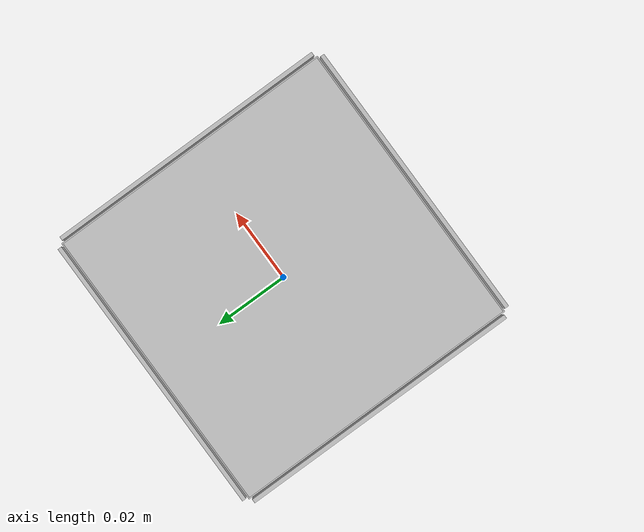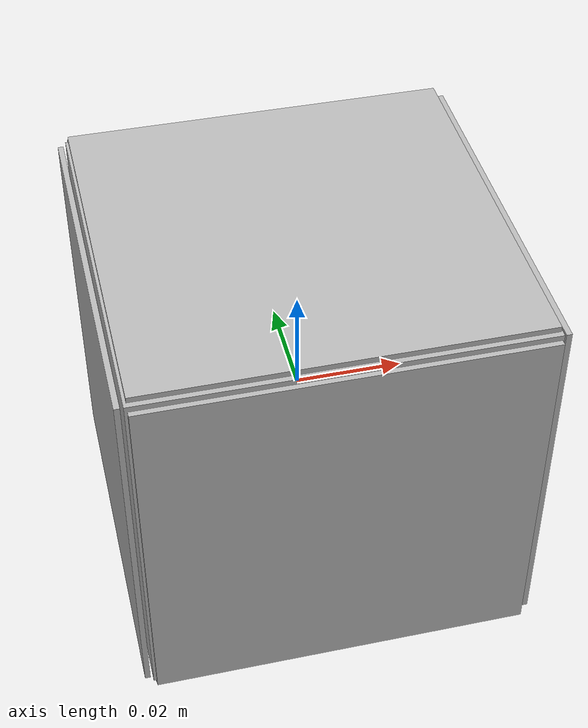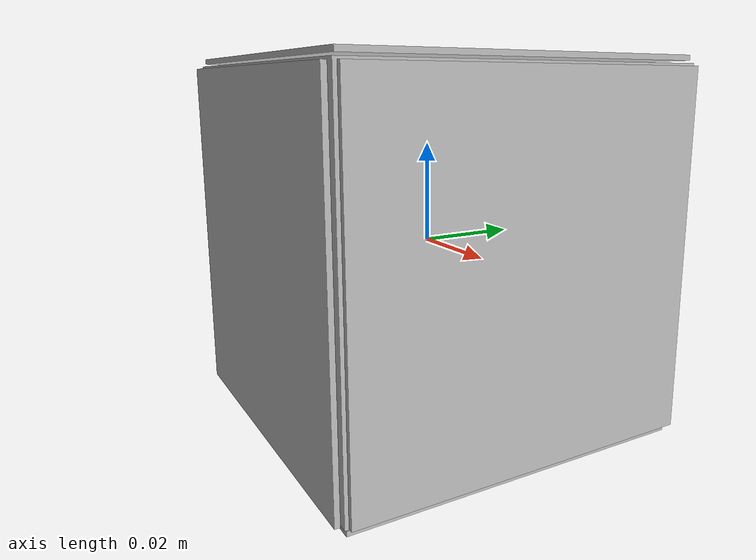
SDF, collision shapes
<?xml version='1.0'?>
<sdf version='1.7'>
  <model name='april_cube'>
    <link name='april_cube_40'>
      <pose>0 0 0 0 -0 0</pose>
      <inertial>
        <pose>0 0 0 0 -0 0</pose>
        <mass>0.036</mass>
        <inertia>
          <ixx>0.00108533</ixx>
          <ixy>-1.20708e-12</ixy>
          <ixz>-2.45849e-16</ixz>
          <iyy>8.5329e-05</iyy>
          <iyz>4.99917e-09</iyz>
          <izz>8.5329e-05</izz>
        </inertia>
      </inertial>
      <gravity>1</gravity>
      <self_collide>0</self_collide>
      <enable_wind>0</enable_wind>
      <kinematic>0</kinematic>
      <visual name='april_cube_40_visual'>
        <pose>0 0 0 0 -0 0</pose>
        <geometry>
          <box>
            <size>0.071 0.071 0.071</size>
          </box>
        </geometry>
        <material>
          <shader type='pixel'/>
        </material>
        <transparency>0</transparency>
        <cast_shadows>1</cast_shadows>
      </visual>
      <visual name='april_cube_40_tag_40_visual_1'>
        <pose>0 0 0.0365 0 -0 0</pose>
        <geometry>
          <mesh>
            <scale>0.7 0.7 1</scale>
            <uri>/home/coll0215/catkin_ws/src/turtlebot3_task/meshes/tag36_11_00040.dae</uri>
          </mesh>
        </geometry>
        <material>
          <shader type='pixel'/>
        </material>
        <transparency>0</transparency>
        <cast_shadows>1</cast_shadows>
      </visual>
      <visual name='april_cube_40_tag_41_visual_2'>
        <pose>0 -0.0365 0 1.571 -0 0</pose>
        <geometry>
          <mesh>
            <scale>0.7 0.7 1</scale>
            <uri>/home/coll0215/catkin_ws/src/turtlebot3_task/meshes/tag36_11_00041.dae</uri>
          </mesh>
        </geometry>
        <material>
          <shader type='pixel'/>
        </material>
        <transparency>0</transparency>
        <cast_shadows>1</cast_shadows>
      </visual>
      <visual name='april_cube_40_tag_42_visual_3'>
        <pose>0.0365 0 0 1.571 -0 1.571</pose>
        <geometry>
          <mesh>
            <scale>0.7 0.7 1</scale>
            <uri>/home/coll0215/catkin_ws/src/turtlebot3_task/meshes/tag36_11_00042.dae</uri>
          </mesh>
        </geometry>
        <material>
          <shader type='pixel'/>
        </material>
        <transparency>0</transparency>
        <cast_shadows>1</cast_shadows>
      </visual>
      <visual name='april_cube_40_tag_43_visual_4'>
        <pose>0 0.0365 0 1.57059 0.000593 3.14159</pose>
        <geometry>
          <mesh>
            <scale>0.7 0.7 1</scale>
            <uri>/home/coll0215/catkin_ws/src/turtlebot3_task/meshes/tag36_11_00043.dae</uri>
          </mesh>
        </geometry>
        <material>
          <shader type='pixel'/>
        </material>
        <transparency>0</transparency>
        <cast_shadows>1</cast_shadows>
      </visual>
      <visual name='april_cube_40_tag_44_visual_5'>
        <pose>-0.0365 0 0 1.571 -0 -1.571</pose>
        <geometry>
          <mesh>
            <scale>0.7 0.7 1</scale>
            <uri>/home/coll0215/catkin_ws/src/turtlebot3_task/meshes/tag36_11_00044.dae</uri>
          </mesh>
        </geometry>
        <material>
          <shader type='pixel'/>
        </material>
        <transparency>0</transparency>
        <cast_shadows>1</cast_shadows>
      </visual>
      <visual name='april_cube_40_tag_45_visual_6'>
        <pose>0 0 -0.0365 3.1415 -0 0</pose>
        <geometry>
          <mesh>
            <scale>0.7 0.7 1</scale>
            <uri>/home/coll0215/catkin_ws/src/turtlebot3_task/meshes/tag36_11_00045.dae</uri>
          </mesh>
        </geometry>
        <material>
          <shader type='pixel'/>
        </material>
        <transparency>0</transparency>
        <cast_shadows>1</cast_shadows>
      </visual>
      <collision name='april_cube_40_collision'>
        <laser_retro>0</laser_retro>
        <max_contacts>10</max_contacts>
        <pose>0 0 0 0 -0 0</pose>
        <geometry>
          <box>
            <size>0.071 0.071 0.071</size>
          </box>
        </geometry>
        <surface>
          <friction>
            <ode>
              <mu>100</mu>
              <mu2>100</mu2>
              <fdir1>0 0 0</fdir1>
              <slip1>0</slip1>
              <slip2>0</slip2>
            </ode>
            <torsional>
              <coefficient>1</coefficient>
              <patch_radius>0</patch_radius>
              <surface_radius>0</surface_radius>
              <use_patch_radius>1</use_patch_radius>
              <ode>
                <slip>0</slip>
              </ode>
            </torsional>
          </friction>
          <bounce>
            <restitution_coefficient>0</restitution_coefficient>
            <threshold>1e+06</threshold>
          </bounce>
          <contact>
            <collide_without_contact>0</collide_without_contact>
            <collide_without_contact_bitmask>1</collide_without_contact_bitmask>
            <collide_bitmask>1</collide_bitmask>
            <ode>
              <soft_cfm>0</soft_cfm>
              <soft_erp>0.2</soft_erp>
              <kp>1e+06</kp>
              <kd>1</kd>
              <max_vel>0.01</max_vel>
              <min_depth>0</min_depth>
            </ode>
            <bullet>
              <split_impulse>1</split_impulse>
              <split_impulse_penetration_threshold>-0.01</split_impulse_penetration_threshold>
              <soft_cfm>0</soft_cfm>
              <soft_erp>0.2</soft_erp>
              <kp>1e+06</kp>
              <kd>1</kd>
            </bullet>
          </contact>
        </surface>
      </collision>
      <collision name='april_cube_40_tag_40_collision_1'>
        <laser_retro>0</laser_retro>
        <max_contacts>10</max_contacts>
        <pose>0 0 0.0365 0 -0 0</pose>
        <geometry>
          <box>
            <size>0.07 0.07 0.001</size>
          </box>
        </geometry>
        <surface>
          <friction>
            <ode>
              <mu>100</mu>
              <mu2>100</mu2>
              <fdir1>0 0 0</fdir1>
              <slip1>0</slip1>
              <slip2>0</slip2>
            </ode>
            <torsional>
              <coefficient>1</coefficient>
              <patch_radius>0</patch_radius>
              <surface_radius>0</surface_radius>
              <use_patch_radius>1</use_patch_radius>
              <ode>
                <slip>0</slip>
              </ode>
            </torsional>
          </friction>
          <bounce>
            <restitution_coefficient>0</restitution_coefficient>
            <threshold>1e+06</threshold>
          </bounce>
          <contact>
            <collide_without_contact>0</collide_without_contact>
            <collide_without_contact_bitmask>1</collide_without_contact_bitmask>
            <collide_bitmask>1</collide_bitmask>
            <ode>
              <soft_cfm>0</soft_cfm>
              <soft_erp>0.2</soft_erp>
              <kp>1e+06</kp>
              <kd>1</kd>
              <max_vel>0.01</max_vel>
              <min_depth>0</min_depth>
            </ode>
            <bullet>
              <split_impulse>1</split_impulse>
              <split_impulse_penetration_threshold>-0.01</split_impulse_penetration_threshold>
              <soft_cfm>0</soft_cfm>
              <soft_erp>0.2</soft_erp>
              <kp>1e+06</kp>
              <kd>1</kd>
            </bullet>
          </contact>
        </surface>
      </collision>
      <collision name='april_cube_40_tag_41_collision_2'>
        <laser_retro>0</laser_retro>
        <max_contacts>10</max_contacts>
        <pose>0 -0.0365 0 1.571 -0 0</pose>
        <geometry>
          <box>
            <size>0.07 0.07 0.001</size>
          </box>
        </geometry>
        <surface>
          <friction>
            <ode>
              <mu>100</mu>
              <mu2>100</mu2>
              <fdir1>0 0 0</fdir1>
              <slip1>0</slip1>
              <slip2>0</slip2>
            </ode>
            <torsional>
              <coefficient>1</coefficient>
              <patch_radius>0</patch_radius>
              <surface_radius>0</surface_radius>
              <use_patch_radius>1</use_patch_radius>
              <ode>
                <slip>0</slip>
              </ode>
            </torsional>
          </friction>
          <bounce>
            <restitution_coefficient>0</restitution_coefficient>
            <threshold>1e+06</threshold>
          </bounce>
          <contact>
            <collide_without_contact>0</collide_without_contact>
            <collide_without_contact_bitmask>1</collide_without_contact_bitmask>
            <collide_bitmask>1</collide_bitmask>
            <ode>
              <soft_cfm>0</soft_cfm>
              <soft_erp>0.2</soft_erp>
              <kp>1e+06</kp>
              <kd>1</kd>
              <max_vel>0.01</max_vel>
              <min_depth>0</min_depth>
            </ode>
            <bullet>
              <split_impulse>1</split_impulse>
              <split_impulse_penetration_threshold>-0.01</split_impulse_penetration_threshold>
              <soft_cfm>0</soft_cfm>
              <soft_erp>0.2</soft_erp>
              <kp>1e+06</kp>
              <kd>1</kd>
            </bullet>
          </contact>
        </surface>
      </collision>
      <collision name='april_cube_40_tag_43_collision_4'>
        <laser_retro>0</laser_retro>
        <max_contacts>10</max_contacts>
        <pose>0 0.0365 0 1.57059 0.000593 3.14159</pose>
        <geometry>
          <box>
            <size>0.07 0.07 0.001</size>
          </box>
        </geometry>
        <surface>
          <friction>
            <ode>
              <mu>100</mu>
              <mu2>100</mu2>
              <fdir1>0 0 0</fdir1>
              <slip1>0</slip1>
              <slip2>0</slip2>
            </ode>
            <torsional>
              <coefficient>1</coefficient>
              <patch_radius>0</patch_radius>
              <surface_radius>0</surface_radius>
              <use_patch_radius>1</use_patch_radius>
              <ode>
                <slip>0</slip>
              </ode>
            </torsional>
          </friction>
          <bounce>
            <restitution_coefficient>0</restitution_coefficient>
            <threshold>1e+06</threshold>
          </bounce>
          <contact>
            <collide_without_contact>0</collide_without_contact>
            <collide_without_contact_bitmask>1</collide_without_contact_bitmask>
            <collide_bitmask>1</collide_bitmask>
            <ode>
              <soft_cfm>0</soft_cfm>
              <soft_erp>0.2</soft_erp>
              <kp>1e+06</kp>
              <kd>1</kd>
              <max_vel>0.01</max_vel>
              <min_depth>0</min_depth>
            </ode>
            <bullet>
              <split_impulse>1</split_impulse>
              <split_impulse_penetration_threshold>-0.01</split_impulse_penetration_threshold>
              <soft_cfm>0</soft_cfm>
              <soft_erp>0.2</soft_erp>
              <kp>1e+06</kp>
              <kd>1</kd>
            </bullet>
          </contact>
        </surface>
      </collision>
      <collision name='april_cube_40_tag_42_collision_3'>
        <laser_retro>0</laser_retro>
        <max_contacts>10</max_contacts>
        <pose>0.0365 0 0 1.571 -0 1.571</pose>
        <geometry>
          <box>
            <size>0.07 0.07 0.001</size>
          </box>
        </geometry>
        <surface>
          <friction>
            <ode>
              <mu>100</mu>
              <mu2>100</mu2>
              <fdir1>0 0 0</fdir1>
              <slip1>0</slip1>
              <slip2>0</slip2>
            </ode>
            <torsional>
              <coefficient>1</coefficient>
              <patch_radius>0</patch_radius>
              <surface_radius>0</surface_radius>
              <use_patch_radius>1</use_patch_radius>
              <ode>
                <slip>0</slip>
              </ode>
            </torsional>
          </friction>
          <bounce>
            <restitution_coefficient>0</restitution_coefficient>
            <threshold>1e+06</threshold>
          </bounce>
          <contact>
            <collide_without_contact>0</collide_without_contact>
            <collide_without_contact_bitmask>1</collide_without_contact_bitmask>
            <collide_bitmask>1</collide_bitmask>
            <ode>
              <soft_cfm>0</soft_cfm>
              <soft_erp>0.2</soft_erp>
              <kp>1e+06</kp>
              <kd>1</kd>
              <max_vel>0.01</max_vel>
              <min_depth>0</min_depth>
            </ode>
            <bullet>
              <split_impulse>1</split_impulse>
              <split_impulse_penetration_threshold>-0.01</split_impulse_penetration_threshold>
              <soft_cfm>0</soft_cfm>
              <soft_erp>0.2</soft_erp>
              <kp>1e+06</kp>
              <kd>1</kd>
            </bullet>
          </contact>
        </surface>
      </collision>
      <collision name='april_cube_40_tag_44_collision_5'>
        <laser_retro>0</laser_retro>
        <max_contacts>10</max_contacts>
        <pose>-0.0365 0 0 1.571 -0 -1.571</pose>
        <geometry>
          <box>
            <size>0.07 0.07 0.001</size>
          </box>
        </geometry>
        <surface>
          <friction>
            <ode>
              <mu>100</mu>
              <mu2>100</mu2>
              <fdir1>0 0 0</fdir1>
              <slip1>0</slip1>
              <slip2>0</slip2>
            </ode>
            <torsional>
              <coefficient>1</coefficient>
              <patch_radius>0</patch_radius>
              <surface_radius>0</surface_radius>
              <use_patch_radius>1</use_patch_radius>
              <ode>
                <slip>0</slip>
              </ode>
            </torsional>
          </friction>
          <bounce>
            <restitution_coefficient>0</restitution_coefficient>
            <threshold>1e+06</threshold>
          </bounce>
          <contact>
            <collide_without_contact>0</collide_without_contact>
            <collide_without_contact_bitmask>1</collide_without_contact_bitmask>
            <collide_bitmask>1</collide_bitmask>
            <ode>
              <soft_cfm>0</soft_cfm>
              <soft_erp>0.2</soft_erp>
              <kp>1e+06</kp>
              <kd>1</kd>
              <max_vel>0.01</max_vel>
              <min_depth>0</min_depth>
            </ode>
            <bullet>
              <split_impulse>1</split_impulse>
              <split_impulse_penetration_threshold>-0.01</split_impulse_penetration_threshold>
              <soft_cfm>0</soft_cfm>
              <soft_erp>0.2</soft_erp>
              <kp>1e+06</kp>
              <kd>1</kd>
            </bullet>
          </contact>
        </surface>
      </collision>
      <collision name='april_cube_40_tag_45_collision_6'>
        <laser_retro>0</laser_retro>
        <max_contacts>10</max_contacts>
        <pose>0 0 -0.0365 3.1415 -0 0</pose>
        <geometry>
          <box>
            <size>0.07 0.07 0.001</size>
          </box>
        </geometry>
        <surface>
          <friction>
            <ode>
              <mu>100</mu>
              <mu2>100</mu2>
              <fdir1>0 0 0</fdir1>
              <slip1>0</slip1>
              <slip2>0</slip2>
            </ode>
            <torsional>
              <coefficient>1</coefficient>
              <patch_radius>0</patch_radius>
              <surface_radius>0</surface_radius>
              <use_patch_radius>1</use_patch_radius>
              <ode>
                <slip>0</slip>
              </ode>
            </torsional>
          </friction>
          <bounce>
            <restitution_coefficient>0</restitution_coefficient>
            <threshold>1e+06</threshold>
          </bounce>
          <contact>
            <collide_without_contact>0</collide_without_contact>
            <collide_without_contact_bitmask>1</collide_without_contact_bitmask>
            <collide_bitmask>1</collide_bitmask>
            <ode>
              <soft_cfm>0</soft_cfm>
              <soft_erp>0.2</soft_erp>
              <kp>1e+06</kp>
              <kd>1</kd>
              <max_vel>0.01</max_vel>
              <min_depth>0</min_depth>
            </ode>
            <bullet>
              <split_impulse>1</split_impulse>
              <split_impulse_penetration_threshold>-0.01</split_impulse_penetration_threshold>
              <soft_cfm>0</soft_cfm>
              <soft_erp>0.2</soft_erp>
              <kp>1e+06</kp>
              <kd>1</kd>
            </bullet>
          </contact>
        </surface>
      </collision>
    </link>
    <static>0</static>
    <allow_auto_disable>1</allow_auto_disable>
  </model>
</sdf>
